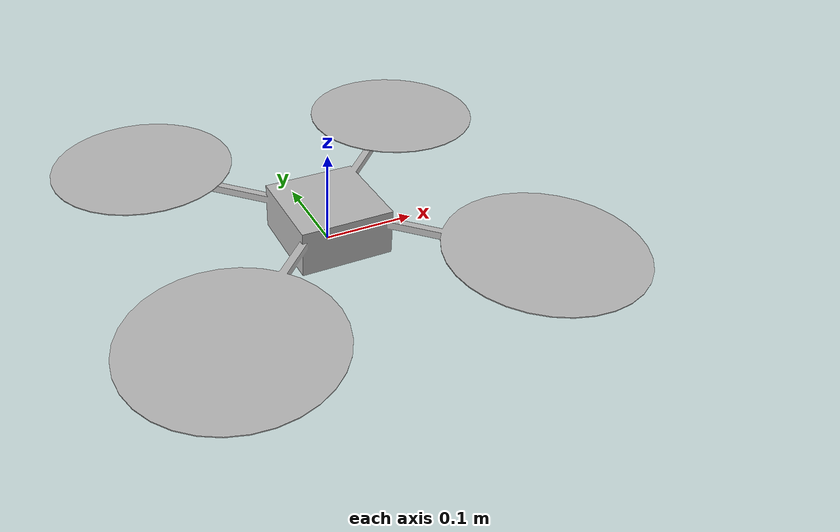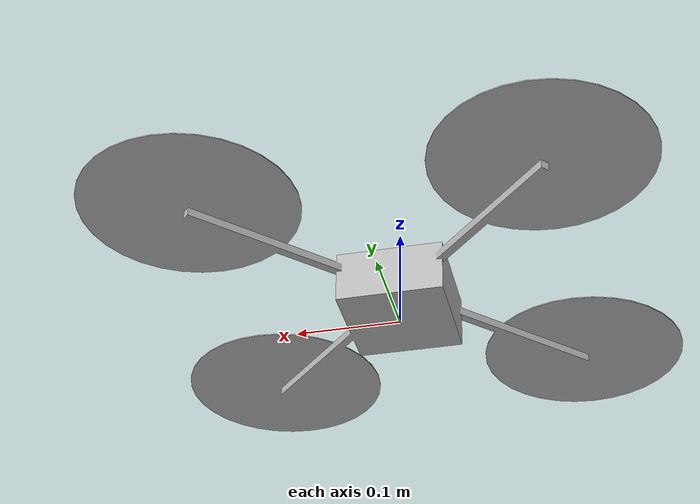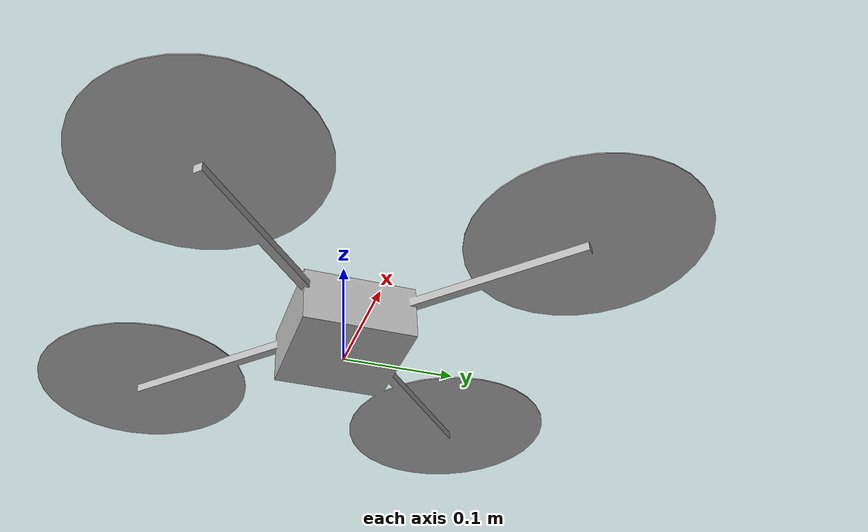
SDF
<?xml version="1.0"?>
<sdf version="1.6">
  <model name="mav">
    <!-- Handling physics ourselves instead of using Gazebo's physics engine -->

    <link name="chasis">
      <kinematics>true</kinematics>
      <collision name="collision">
        <geometry>
          <mesh>
            <uri>model://mav/model.obj</uri>
          </mesh>
        </geometry>
      </collision>

      <visual name="visual">
        <geometry>
          <mesh>
            <uri>model://mav/model.obj</uri>
          </mesh>
        </geometry>
      </visual>
    </link>
    <plugin filename="libMavPlugin" name="MavPlugin">
    </plugin>

  </model>
</sdf>
